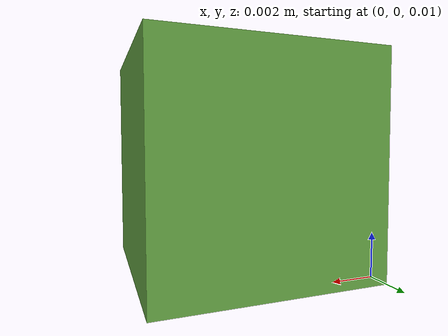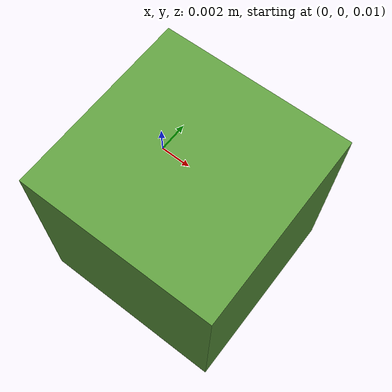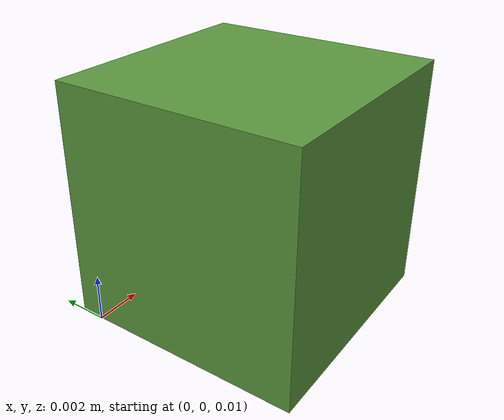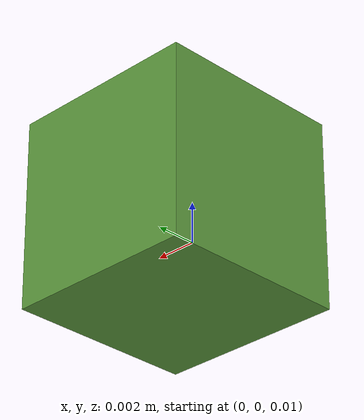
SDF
<?xml version='1.0'?>
<sdf version="1.4">
  <model name="Cube002">
    <link name="Cube002">
    <gravity>0</gravity>
      <collision name="collision">
        <mesh>
          <uri>model://meshes/Cube002.dae</uri>
        </mesh>
      </collision>
      <visual name="visual">
        <geometry>
          <mesh>
            <uri>model://meshes/Cube002.dae</uri>
          </mesh>
        </geometry>
        <surface>
          <friction>
            <ode>
              <mu>0.0</mu>
            </ode>
          </friction>
        </surface>
      </visual>
  </link>
  </model>
</sdf>
